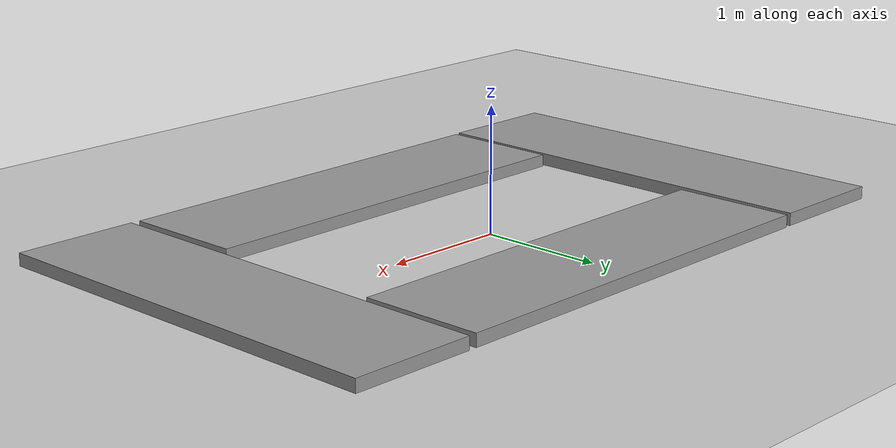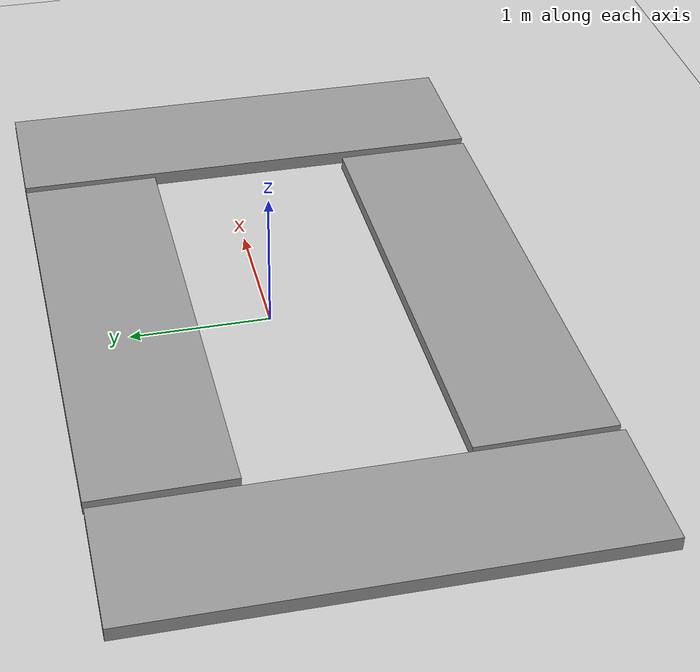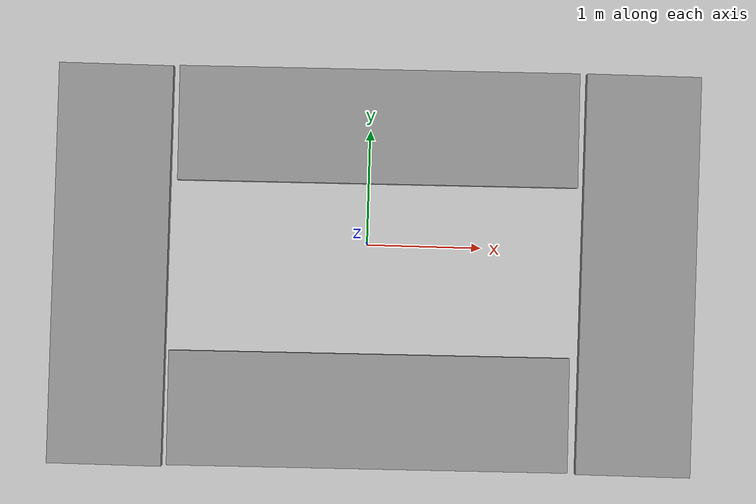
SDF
<sdf version="1.7">
 <world name="default">
  <light name="sun" type="directional">
   <pose>0 0 10 0 -0 0</pose>
   <diffuse>0.8 0.8 0.8 1</diffuse>
   <specular>0.2 0.2 0.2 1</specular>
   <attenuation>
    <range>1000</range>
    <constant>0.9</constant>
    <linear>0.01</linear>
    <quadratic>0.001</quadratic>
   </attenuation>
   <direction>-0.5 0.1 -0.9</direction>
   <spot><inner_angle>0</inner_angle><outer_angle>0</outer_angle><falloff>0</falloff></spot>
  </light>
  <model name="ground_plane">
   <static>1</static>
   <link name="link">
    <collision name="collision">
     <geometry><plane><normal>0 0 1</normal><size>100 100</size></plane></geometry>
     <surface><friction><ode><mu>100</mu><mu2>50</mu2></ode></friction></surface>
    </collision>
    <visual name="visual">
     <cast_shadows>0</cast_shadows>
     <geometry><plane><normal>0 0 1</normal><size>100 100</size></plane></geometry>
     <material>
      <script><uri>file://media/materials/scripts/gazebo.material</uri><name>Gazebo/Grey</name></script>
     </material>
    </visual>
   </link>
  </model>
  <gravity>0 0 -9.8</gravity>
  <magnetic_field>6e-06 2.3e-05 -4.2e-05</magnetic_field>
  <atmosphere type="adiabatic"/>
  <physics type="ode">
   <max_step_size>0.001</max_step_size>
   <real_time_factor>1</real_time_factor>
   <real_time_update_rate>1000</real_time_update_rate>
  </physics>
  <scene><ambient>0.4 0.4 0.4 1</ambient><background>0.7 0.7 0.7 1</background><shadows>1</shadows></scene>
  <spherical_coordinates>
   <surface_model>EARTH_WGS84</surface_model>
   <latitude_deg>0</latitude_deg>
   <longitude_deg>0</longitude_deg>
   <elevation>0</elevation>
   <heading_deg>0</heading_deg>
  </spherical_coordinates>
  <model name="stair0.1">
   <pose>2.37811 0.407084 0 0 -0 0</pose>
   <link name="Stairs_1">
    <visual name="Stairs_1_Visual_0">
     <pose>-0 -0.605 0.05 0 -0 0</pose>
     <geometry><box><size>1 3.5 0.1</size></box></geometry>
     <material>
      <script><uri>file://media/materials/scripts/gazebo.material</uri><name>Gazebo/Grey</name></script>
      <ambient>1 1 1 1</ambient>
     </material>
     <meta><layer>0</layer></meta>
    </visual>
    <collision name="Stairs_1_Collision_0">
     <geometry><box><size>1 3.5 0.1</size></box></geometry>
     <pose>-0 -0.605 0.05 0 -0 0</pose>
    </collision>
   </link>
   <static>1</static>
  </model>
  <model name="stair0.1_clone">
   <pose>-0.552888 -1.46327 0 0 -0 1.5809</pose>
   <link name="Stairs_1">
    <visual name="Stairs_1_Visual_0">
     <pose>-0 -0.605 0.05 0 -0 0</pose>
     <geometry><box><size>1 3.5 0.1</size></box></geometry>
     <material>
      <script><uri>file://media/materials/scripts/gazebo.material</uri><name>Gazebo/Grey</name></script>
      <ambient>1 1 1 1</ambient>
     </material>
     <meta><layer>0</layer></meta>
    </visual>
    <collision name="Stairs_1_Collision_0">
     <geometry><box><size>1 3.5 0.1</size></box></geometry>
     <pose>-0 -0.605 0.05 0 -0 0</pose>
    </collision>
   </link>
   <static>1</static>
  </model>
  <model name="stair0.1_clone_clone">
   <pose>-0.535228 1.02712 0 0 -0 1.5809</pose>
   <link name="Stairs_1">
    <visual name="Stairs_1_Visual_0">
     <pose>-0 -0.605 0.05 0 -0 0</pose>
     <geometry><box><size>1 3.5 0.1</size></box></geometry>
     <material>
      <script><uri>file://media/materials/scripts/gazebo.material</uri><name>Gazebo/Grey</name></script>
      <ambient>1 1 1 1</ambient>
     </material>
     <meta><layer>0</layer></meta>
    </visual>
    <collision name="Stairs_1_Collision_0">
     <geometry><box><size>1 3.5 0.1</size></box></geometry>
     <pose>-0 -0.605 0.05 0 -0 0</pose>
    </collision>
   </link>
   <static>1</static>
  </model>
  <model name="stair0.1_clone_0">
   <pose>-2.23933 0.364981 0 0 -0 0</pose>
   <link name="Stairs_1">
    <visual name="Stairs_1_Visual_0">
     <pose>-0 -0.605 0.05 0 -0 0</pose>
     <geometry><box><size>1 3.5 0.1</size></box></geometry>
     <material>
      <script><uri>file://media/materials/scripts/gazebo.material</uri><name>Gazebo/Grey</name></script>
      <ambient>1 1 1 1</ambient>
     </material>
     <meta><layer>0</layer></meta>
    </visual>
    <collision name="Stairs_1_Collision_0">
     <geometry><box><size>1 3.5 0.1</size></box></geometry>
     <pose>-0 -0.605 0.05 0 -0 0</pose>
    </collision>
   </link>
   <static>1</static>
  </model>
 </world>
</sdf>
